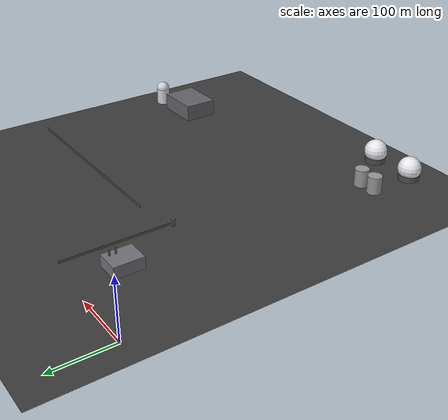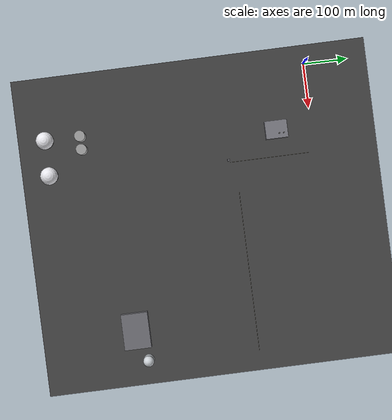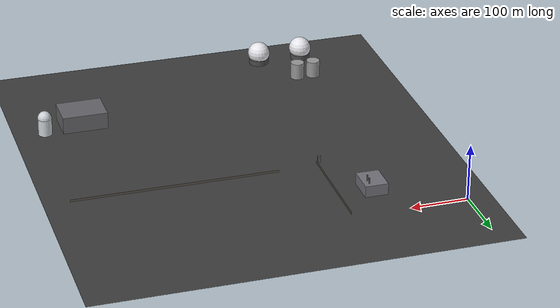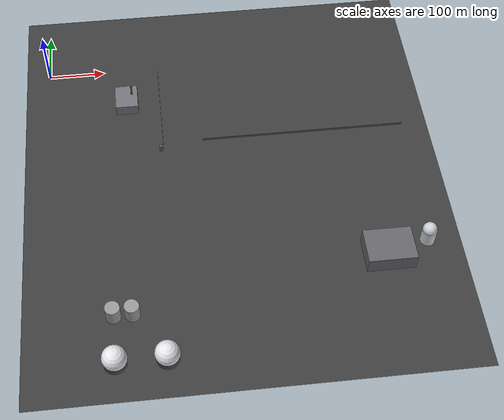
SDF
<sdf version="1.9">
 <world name="lng_terminal">
  <model name="ground">
   <static>true</static>
   <pose>0 0 -0.05 0 0 0</pose>
   <link name="l">
    <collision name="c"><geometry><box><size>2000 2000 0.1</size></box></geometry></collision>
    <visual name="v">
     <geometry><box><size>2000 2000 0.1</size></box></geometry>
     <material>
      <ambient>0.18 0.18 0.18 1</ambient>
      <diffuse>0.24 0.24 0.24 1</diffuse>
      <specular>0.03 0.03 0.03 1</specular>
      <pbr><metal><roughness>0.96</roughness><metalness>0.0</metalness></metal></pbr>
     </material>
    </visual>
   </link>
  </model>
  <model name="s1_fence_e_s">
   <static>true</static>
   <pose>200 -100 2 0 0 1.5707</pose>
   <link name="l">
    <collision name="c"><geometry><box><size>184 0.5 4</size></box></geometry></collision>
    <visual name="v">
     <geometry><box><size>184 0.5 4</size></box></geometry>
     <material><ambient>0.26 0.24 0.22 1</ambient><diffuse>0.34 0.32 0.28 1</diffuse></material>
    </visual>
   </link>
  </model>
  <model name="tw_se">
   <static>true</static>
   <pose>195 -195 6 0 0 0</pose>
   <link name="l">
    <collision name="c"><geometry><box><size>5 5 12</size></box></geometry></collision>
    <visual name="v">
     <geometry><box><size>5 5 12</size></box></geometry>
     <material>
      <ambient>0.26 0.26 0.28 1</ambient>
      <diffuse>0.34 0.34 0.36 1</diffuse>
      <pbr><metal><roughness>0.55</roughness><metalness>0.45</metalness></metal></pbr>
     </material>
    </visual>
   </link>
  </model>
  <model name="s1_processing_plant">
   <static>true</static>
   <pose>140 -80 10 0 0 0</pose>
   <link name="l">
    <collision name="c"><geometry><box><size>40 50 20</size></box></geometry></collision>
    <visual name="v">
     <geometry><box><size>40 50 20</size></box></geometry>
     <material>
      <ambient>0.35 0.35 0.38 1</ambient>
      <diffuse>0.45 0.45 0.48 1</diffuse>
      <pbr><metal><roughness>0.6</roughness><metalness>0.3</metalness></metal></pbr>
     </material>
    </visual>
    <visual name="chimney1">
     <pose>10 15 15 0 0 0</pose>
     <geometry><cylinder><radius>1.5</radius><length>10</length></cylinder></geometry>
     <material><ambient>0.2 0.2 0.2 1</ambient><diffuse>0.3 0.3 0.3 1</diffuse></material>
    </visual>
    <visual name="chimney2">
     <pose>10 5 15 0 0 0</pose>
     <geometry><cylinder><radius>1.5</radius><length>10</length></cylinder></geometry>
     <material><ambient>0.2 0.2 0.2 1</ambient><diffuse>0.3 0.3 0.3 1</diffuse></material>
    </visual>
   </link>
  </model>
  <model name="s2_fence_s">
   <static>true</static>
   <pose>450 -180 2 0 0 0</pose>
   <link name="l">
    <collision name="c"><geometry><box><size>360 0.5 4</size></box></geometry></collision>
    <visual name="v">
     <geometry><box><size>360 0.5 4</size></box></geometry>
     <material><ambient>0.26 0.24 0.22 1</ambient><diffuse>0.34 0.32 0.28 1</diffuse></material>
    </visual>
   </link>
  </model>
  <model name="s4_bldg1">
   <static>true</static>
   <pose>550 -450 15 0 0 0</pose>
   <link name="l">
    <collision name="c"><geometry><box><size>80 60 30</size></box></geometry></collision>
    <visual name="v">
     <geometry><box><size>80 60 30</size></box></geometry>
     <material>
      <ambient>0.32 0.32 0.34 1</ambient>
      <diffuse>0.40 0.40 0.42 1</diffuse>
      <pbr><metal><roughness>0.6</roughness><metalness>0.3</metalness></metal></pbr>
     </material>
    </visual>
   </link>
  </model>
  <model name="s4_tank1">
   <static>true</static>
   <pose>620 -430 15 0 0 0</pose>
   <link name="l">
    <collision name="c">
     <geometry><cylinder><radius>12</radius><length>30</length></cylinder></geometry>
    </collision>
    <visual name="v">
     <geometry><cylinder><radius>12</radius><length>30</length></cylinder></geometry>
     <material>
      <ambient>0.72 0.74 0.76 1</ambient>
      <diffuse>0.82 0.84 0.86 1</diffuse>
      <pbr><metal><roughness>0.2</roughness><metalness>0.9</metalness></metal></pbr>
     </material>
    </visual>
    <visual name="d">
     <pose>0 0 16 0 0 0</pose>
     <geometry><sphere><radius>12.2</radius></sphere></geometry>
     <material>
      <ambient>0.70 0.72 0.74 1</ambient>
      <diffuse>0.80 0.82 0.84 1</diffuse>
      <pbr><metal><roughness>0.18</roughness><metalness>0.92</metalness></metal></pbr>
     </material>
    </visual>
   </link>
  </model>
  <model name="s8_storage_farm">
   <static>true</static>
   <pose>100 -600 0 0 0 0</pose>
   <link name="l">
    <collision name="c_sph1">
     <pose>0 0 20 0 0 0</pose>
     <geometry><sphere><radius>20</radius></sphere></geometry>
    </collision>
    <visual name="v_sph1">
     <pose>0 0 20 0 0 0</pose>
     <geometry><sphere><radius>20</radius></sphere></geometry>
     <material>
      <ambient>0.8 0.8 0.82 1</ambient>
      <diffuse>0.9 0.9 0.92 1</diffuse>
      <pbr><metal><roughness>0.2</roughness><metalness>0.8</metalness></metal></pbr>
     </material>
    </visual>
    <visual name="v_base1">
     <pose>0 0 5 0 0 0</pose>
     <geometry><cylinder><radius>18</radius><length>10</length></cylinder></geometry>
     <material><ambient>0.3 0.3 0.3 1</ambient></material>
    </visual>
    <collision name="c_sph2">
     <pose>80 0 20 0 0 0</pose>
     <geometry><sphere><radius>20</radius></sphere></geometry>
    </collision>
    <visual name="v_sph2">
     <pose>80 0 20 0 0 0</pose>
     <geometry><sphere><radius>20</radius></sphere></geometry>
     <material>
      <ambient>0.8 0.8 0.82 1</ambient>
      <diffuse>0.9 0.9 0.92 1</diffuse>
      <pbr><metal><roughness>0.2</roughness><metalness>0.8</metalness></metal></pbr>
     </material>
    </visual>
    <visual name="v_base2">
     <pose>80 0 5 0 0 0</pose>
     <geometry><cylinder><radius>18</radius><length>10</length></cylinder></geometry>
     <material><ambient>0.3 0.3 0.3 1</ambient></material>
    </visual>
    <collision name="c_cyl1">
     <pose>0 80 15 0 0 0</pose>
     <geometry><cylinder><radius>12</radius><length>30</length></cylinder></geometry>
    </collision>
    <visual name="v_cyl1">
     <pose>0 80 15 0 0 0</pose>
     <geometry><cylinder><radius>12</radius><length>30</length></cylinder></geometry>
     <material>
      <ambient>0.6 0.6 0.6 1</ambient>
      <pbr><metal><roughness>0.3</roughness><metalness>0.7</metalness></metal></pbr>
     </material>
    </visual>
    <collision name="c_cyl2">
     <pose>30 80 15 0 0 0</pose>
     <geometry><cylinder><radius>12</radius><length>30</length></cylinder></geometry>
    </collision>
    <visual name="v_cyl2">
     <pose>30 80 15 0 0 0</pose>
     <geometry><cylinder><radius>12</radius><length>30</length></cylinder></geometry>
     <material>
      <ambient>0.6 0.6 0.6 1</ambient>
      <pbr><metal><roughness>0.3</roughness><metalness>0.7</metalness></metal></pbr>
     </material>
    </visual>
   </link>
  </model>
 </world>
</sdf>
